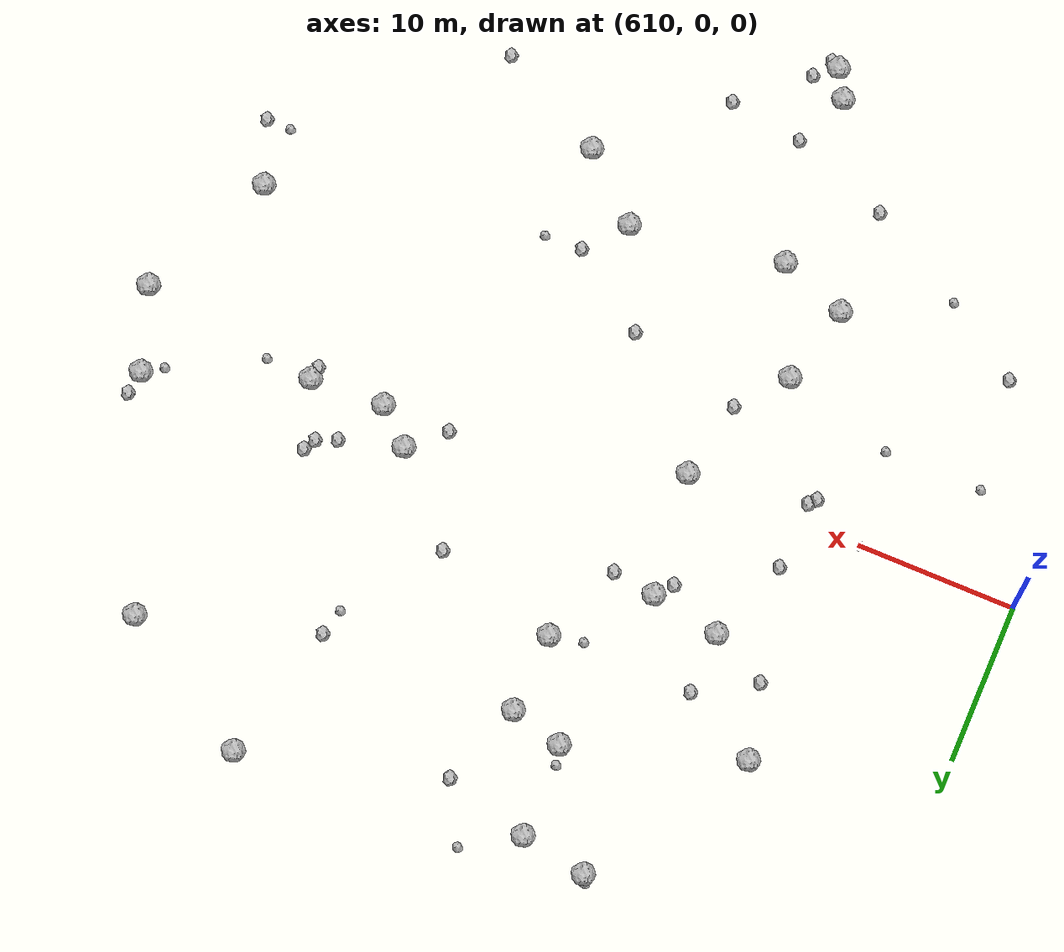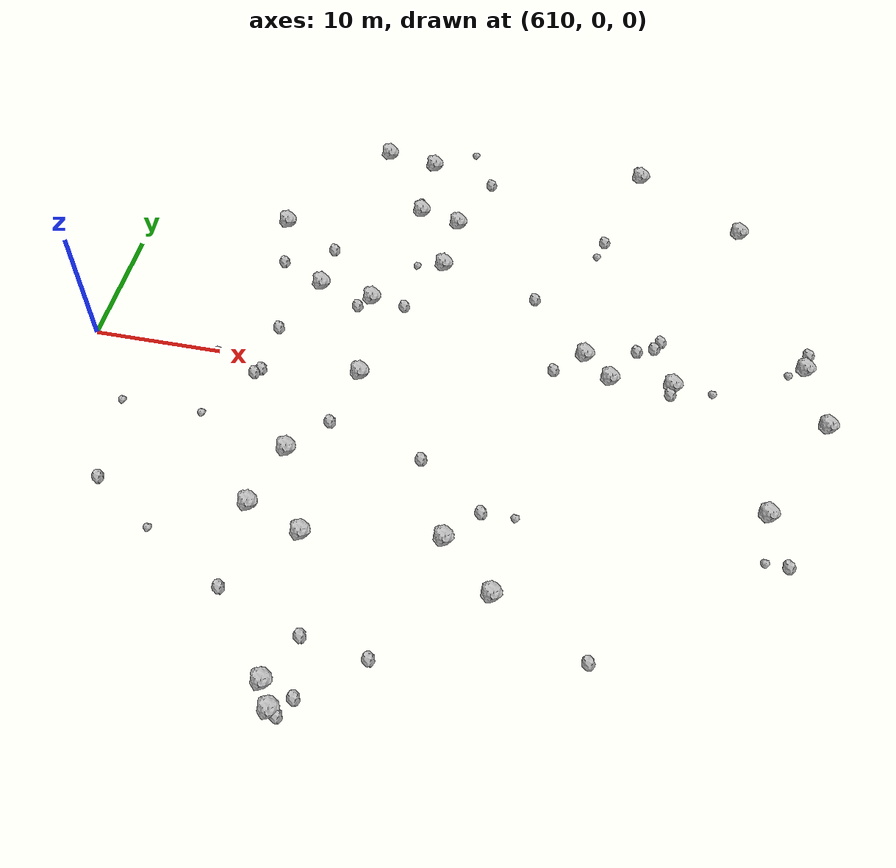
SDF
<sdf version="1.6">
 <world name="default">
  <include><uri>model://sun</uri></include>
  <model name="rock1_16_3">
   <include><uri>model://rock1</uri><pose>625.8511301953043 8.32347355373502 0.5 0 0 0</pose></include>
  </model>
  <model name="rock1_16_4">
   <include><uri>model://rock1</uri><pose>626.423620347513 -13.021898240915739 0.5 0 0 0</pose></include>
  </model>
  <model name="rock1_16_5">
   <include><uri>model://rock1</uri><pose>630.2264757129564 7.560823904862474 0.5 0 0 0</pose></include>
  </model>
  <model name="rock1_16_6">
   <include><uri>model://rock1</uri><pose>627.7098868758737 -7.999602285160876 0.5 0 0 0</pose></include>
  </model>
  <model name="rock1_16_7">
   <include><uri>model://rock1</uri><pose>635.0898827180231 12.298429985983283 0.5 0 0 0</pose></include>
  </model>
  <model name="rock1_16_8">
   <include><uri>model://rock1</uri><pose>631.3065709874558 -25.60542748135935 0.5 0 0 0</pose></include>
  </model>
  <model name="rock1_16_9">
   <include><uri>model://rock1</uri><pose>662.0341681712786 -6.849445329375833 0.5 0 0 0</pose></include>
  </model>
  <model name="rock1_16_10">
   <include><uri>model://rock1</uri><pose>631.167754142936 -0.10481697484053853 0.5 0 0 0</pose></include>
  </model>
  <model name="rock1_16_11">
   <include><uri>model://rock1</uri><pose>631.8408098669324 24.000051882430775 0.5 0 0 0</pose></include>
  </model>
  <model name="rock1_16_12">
   <include><uri>model://rock1</uri><pose>635.2922613687704 17.28580955743263 0.5 0 0 0</pose></include>
  </model>
  <model name="rock1_16_13">
   <include><uri>model://rock1</uri><pose>664.2358869541345 6.839631505162352 0.5 0 0 0</pose></include>
  </model>
  <model name="rock1_16_14">
   <include><uri>model://rock1</uri><pose>632.3080433082229 -27.33876277423493 0.5 0 0 0</pose></include>
  </model>
  <model name="rock1_16_15">
   <include><uri>model://rock1</uri><pose>649.8153245103878 3.0658135271229554 0.5 0 0 0</pose></include>
  </model>
  <model name="rock1_16_16">
   <include><uri>model://rock1</uri><pose>658.4900204996711 20.709609537550016 0.5 0 0 0</pose></include>
  </model>
  <model name="rock1_16_17">
   <include><uri>model://rock1</uri><pose>654.5313140590647 3.275145461709201 0.5 0 0 0</pose></include>
  </model>
  <model name="rock1_16_18">
   <include><uri>model://rock1</uri><pose>649.7339992282665 25.97395474052726 0.5 0 0 0</pose></include>
  </model>
  <model name="rock1_16_19">
   <include><uri>model://rock1</uri><pose>630.671201936095 -14.591891925461514 0.5 0 0 0</pose></include>
  </model>
  <model name="rock1_16_20">
   <include><uri>model://rock1</uri><pose>627.6596379904099 24.73887050606954 0.5 0 0 0</pose></include>
  </model>
  <model name="rock1_16_21">
   <include><uri>model://rock1</uri><pose>631.966636574882 18.157913056534547 0.5 0 0 0</pose></include>
  </model>
  <model name="rock1_16_22">
   <include><uri>model://rock1</uri><pose>621.19816034371 14.66536554525836 0.5 0 0 0</pose></include>
  </model>
  <model name="rock1_16_23">
   <include><uri>model://rock1</uri><pose>644.3629338360713 -16.723954916140045 0.5 0 0 0</pose></include>
  </model>
  <model name="rock1_16_24">
   <include><uri>model://rock1</uri><pose>640.3866396833885 -13.128336554619352 0.5 0 0 0</pose></include>
  </model>
  <model name="rock1_16_25">
   <include><uri>model://rock1</uri><pose>647.6389731003221 5.005357512273271 0.5 0 0 0</pose></include>
  </model>
  <model name="rock1_16_26">
   <include><uri>model://rock1</uri><pose>665.9889265307576 1.6955403831180327 0.5 0 0 0</pose></include>
  </model>
  <model name="rock2_16_0">
   <include><uri>model://rock2</uri><pose>663.5273596535052 -10.759891918376084 0.3 0 0 0</pose></include>
  </model>
  <model name="rock2_16_1">
   <include><uri>model://rock2</uri><pose>642.4865851352298 -10.60565569450333 0.3 0 0 0</pose></include>
  </model>
  <model name="rock2_16_2">
   <include><uri>model://rock2</uri><pose>637.1831190605151 22.50711354957594 0.3 0 0 0</pose></include>
  </model>
  <model name="rock2_16_3">
   <include><uri>model://rock2</uri><pose>664.4167222311128 8.343213335176628 0.3 0 0 0</pose></include>
  </model>
  <model name="rock2_16_4">
   <include><uri>model://rock2</uri><pose>626.5219834910365 -19.75317261401383 0.3 0 0 0</pose></include>
  </model>
  <model name="rock2_16_5">
   <include><uri>model://rock2</uri><pose>615.3566708766704 -12.996942407331339 0.3 0 0 0</pose></include>
  </model>
  <model name="rock2_16_6">
   <include><uri>model://rock2</uri><pose>647.6256823769376 17.418827394480147 0.3 0 0 0</pose></include>
  </model>
  <model name="rock2_16_7">
   <include><uri>model://rock2</uri><pose>623.7630145675105 -1.1847406244000034 0.3 0 0 0</pose></include>
  </model>
  <model name="rock2_16_8">
   <include><uri>model://rock2</uri><pose>637.4528686282756 -7.018853312834292 0.3 0 0 0</pose></include>
  </model>
  <model name="rock2_16_9">
   <include><uri>model://rock2</uri><pose>653.1925833846045 7.4318692504138255 0.3 0 0 0</pose></include>
  </model>
  <model name="rock2_16_10">
   <include><uri>model://rock2</uri><pose>623.8833133450295 3.0948704601378907 0.3 0 0 0</pose></include>
  </model>
  <model name="rock2_16_11">
   <include><uri>model://rock2</uri><pose>632.848152286911 -27.633396421250747 0.3 0 0 0</pose></include>
  </model>
  <model name="rock2_16_12">
   <include><uri>model://rock2</uri><pose>654.3872532964879 2.4346524819428836 0.3 0 0 0</pose></include>
  </model>
  <model name="rock2_16_13">
   <include><uri>model://rock2</uri><pose>652.781400234336 6.660782943525085 0.3 0 0 0</pose></include>
  </model>
  <model name="rock2_16_14">
   <include><uri>model://rock2</uri><pose>632.9532034038316 7.195008556740355 0.3 0 0 0</pose></include>
  </model>
  <model name="rock2_16_15">
   <include><uri>model://rock2</uri><pose>645.497901241358 3.04862060961495 0.3 0 0 0</pose></include>
  </model>
  <model name="rock2_16_16">
   <include><uri>model://rock2</uri><pose>642.9793763486169 9.956147906722968 0.3 0 0 0</pose></include>
  </model>
  <model name="rock2_16_17">
   <include><uri>model://rock2</uri><pose>637.5202643166596 -22.842010917145878 0.3 0 0 0</pose></include>
  </model>
  <model name="rock2_16_18">
   <include><uri>model://rock2</uri><pose>651.2562327562038 -20.33527320839578 0.3 0 0 0</pose></include>
  </model>
  <model name="rock2_16_19">
   <include><uri>model://rock2</uri><pose>632.8000885686902 -22.12895913304603 0.3 0 0 0</pose></include>
  </model>
  <model name="rock2_16_20">
   <include><uri>model://rock2</uri><pose>629.3263035952532 6.538694202078915 0.3 0 0 0</pose></include>
  </model>
  <model name="rock2_16_21">
   <include><uri>model://rock2</uri><pose>651.5047874060244 6.1163905029737435 0.3 0 0 0</pose></include>
  </model>
  <model name="rock2_16_22">
   <include><uri>model://rock2</uri><pose>622.2984902526604 10.060277499918158 0.3 0 0 0</pose></include>
  </model>
  <model name="rock2_16_23">
   <include><uri>model://rock2</uri><pose>630.1700801201598 -5.023695330018331 0.3 0 0 0</pose></include>
  </model>
  <model name="rock2_16_24">
   <include><uri>model://rock2</uri><pose>623.3445368813934 -1.6338274418589052 0.3 0 0 0</pose></include>
  </model>
  <model name="rock2_16_25">
   <include><uri>model://rock2</uri><pose>625.9338079267573 12.192145095847529 0.3 0 0 0</pose></include>
  </model>
  <model name="rock2_16_26">
   <include><uri>model://rock2</uri><pose>633.5965079434144 -26.31798721273562 0.3 0 0 0</pose></include>
  </model>
  <model name="rock3_16_0">
   <include><uri>model://rock3</uri><pose>627.4867175478317 25.099388937487248 0.2 0 0 0</pose></include>
  </model>
  <model name="rock3_16_1">
   <include><uri>model://rock3</uri><pose>661.9346817714453 -10.782482947463926 0.2 0 0 0</pose></include>
  </model>
  <model name="rock3_16_2">
   <include><uri>model://rock3</uri><pose>632.9556921332643 11.8281700747877 0.2 0 0 0</pose></include>
  </model>
  <model name="rock3_16_3">
   <include><uri>model://rock3</uri><pose>620.2189059417642 -16.274519421898592 0.2 0 0 0</pose></include>
  </model>
  <model name="rock3_16_4">
   <include><uri>model://rock3</uri><pose>662.9737646971007 6.012497225097839 0.2 0 0 0</pose></include>
  </model>
  <model name="rock3_16_5">
   <include><uri>model://rock3</uri><pose>614.4273786149697 -6.046066426281595 0.2 0 0 0</pose></include>
  </model>
  <model name="rock3_16_6">
   <include><uri>model://rock3</uri><pose>647.1899847141347 15.679844538487032 0.2 0 0 0</pose></include>
  </model>
  <model name="rock3_16_7">
   <include><uri>model://rock3</uri><pose>635.1346773823316 26.097427017911492 0.2 0 0 0</pose></include>
  </model>
  <model name="rock3_16_8">
   <include><uri>model://rock3</uri><pose>627.3436089305048 25.178184550521053 0.2 0 0 0</pose></include>
  </model>
  <model name="rock3_16_9">
   <include><uri>model://rock3</uri><pose>619.850627226605 -0.013477893932559937 0.2 0 0 0</pose></include>
  </model>
  <model name="rock3_16_10">
   <include><uri>model://rock3</uri><pose>644.8683186608994 -10.584572396415332 0.2 0 0 0</pose></include>
  </model>
  <model name="rock3_16_11">
   <include><uri>model://rock3</uri><pose>631.6270785184612 19.319158004244265 0.2 0 0 0</pose></include>
  </model>
  <model name="rock3_16_12">
   <include><uri>model://rock3</uri><pose>620.603925936812 -6.041567177863282 0.2 0 0 0</pose></include>
  </model>
  <model name="rock3_16_13">
   <include><uri>model://rock3</uri><pose>657.4816449022577 3.079694353393265 0.2 0 0 0</pose></include>
  </model>
 </world>
</sdf>
